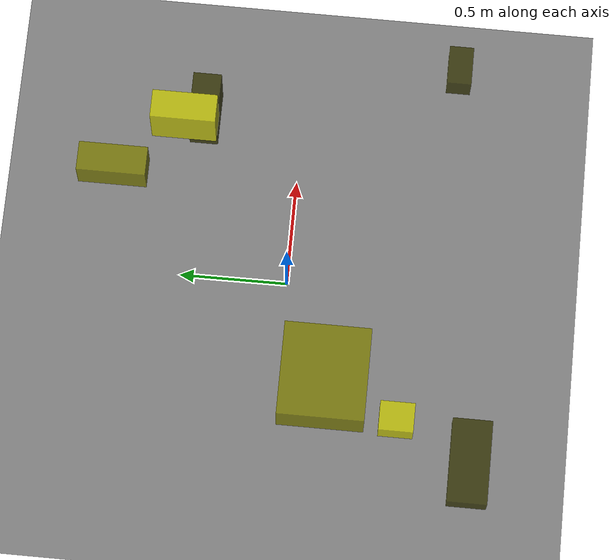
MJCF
<?xml version="1.0"?>
<mujoco model="obstacle_scene">
  <compiler angle="radian" coordinate="local"/>
  <option timestep="0.001" gravity="0 0 -9.81"/>

  <asset>
    <material name="obstacle_mat" rgba="0.8 0.8 0.0 0.8"/>
    <material name="ground_mat" rgba="0.5 0.5 0.5 1"/>
  </asset>

  <worldbody>
    <!-- Ground plane -->
    <geom name="ground" type="plane" size="3 3 0.1" material="ground_mat"/>

    <!-- Obstacles -->
    <body name="obstacle_0" pos="-0.832103 -0.895706 0.252406">
      <geom name="obs_0" type="box" size="0.192009 0.089583 0.048498" rgba="0.2 0.2 0.0 0.8"/>
    </body>
    <body name="obstacle_1" pos="-0.650282 -0.219612 0.830754">
      <geom name="obs_1" type="box" size="0.204548 0.187503 0.096156" rgba="0.5 0.5 0.0 0.8"/>
    </body>
    <body name="obstacle_2" pos="0.394247 0.481979 1.058740">
      <geom name="obs_2" type="box" size="0.061145 0.140475 0.120824" rgba="0.8 0.8 0.0 0.8"/>
    </body>
    <body name="obstacle_3" pos="0.920701 -0.703670 0.549315">
      <geom name="obs_3" type="box" size="0.089303 0.054105 0.063960" rgba="0.2 0.2 0.0 0.8"/>
    </body>
    <body name="obstacle_4" pos="0.395895 0.838472 0.339741">
      <geom name="obs_4" type="box" size="0.067762 0.157834 0.083229" rgba="0.5 0.5 0.0 0.8"/>
    </body>
    <body name="obstacle_5" pos="-0.687689 -0.553452 0.353209">
      <geom name="obs_5" type="box" size="0.067032 0.077422 0.060088" rgba="0.8 0.8 0.0 0.8"/>
    </body>
    <body name="obstacle_6" pos="0.565528 0.417522 0.713025">
      <geom name="obs_6" type="box" size="0.117866 0.062640 0.127297" rgba="0.2 0.2 0.0 0.8"/>
    </body>
  </worldbody>
</mujoco>
